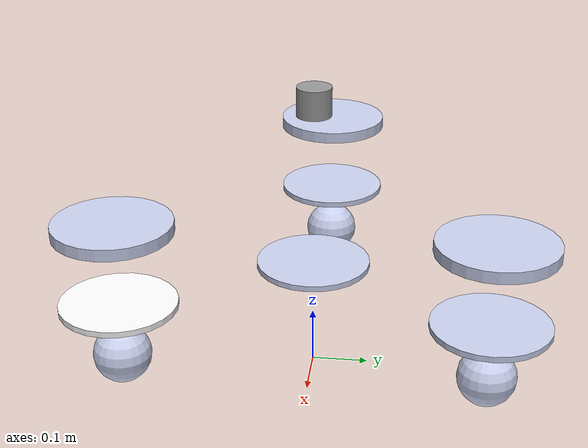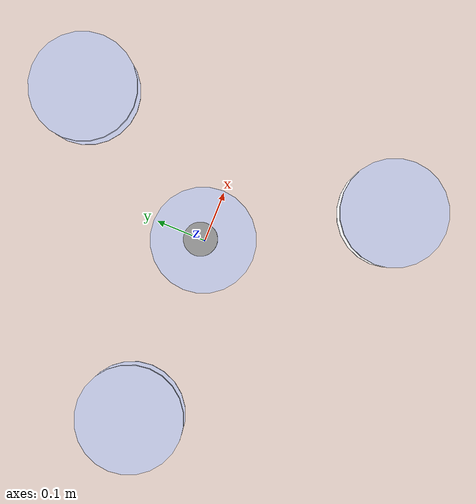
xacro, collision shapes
<?xml version="1.0"?>
<robot name="tri_steer" xmlns:xacro="http://www.ros.org/wiki/xacro">

  <!-- ========== 参数 ========== -->
  <xacro:property name="wheel_radius" value="0.05"/>
  <xacro:property name="body_radius" value="0.05"/>
  <xacro:property name="body_height" value="0.05"/>

  <xacro:property name="wheel_damping" value="0.0001"/>
  <xacro:property name="wheel_friction" value="0.0001"/>

  <xacro:property name="wheel_effot" value="300"/>
  <xacro:property name="wheel_velocity" value="20"/>

  <xacro:property name="turn_effot" value="300"/>
  <xacro:property name="turn_velocity" value="10"/>

  <xacro:property name="pos_wheel_z" value="-0.045"/>

  <xacro:property name="turn_radius" value="0.1"/>
  <xacro:property name="turn_height" value="0.01"/>

  <xacro:property name="lift_radius" value="0.1"/>
  <xacro:property name="lift_height" value="0.02"/>

  <!-- 轮子到车体中心的半径（决定转弯时轮速差） -->

  <!-- ========== base ========== -->
  <link name="base_footprint"/>

  <link
    name="base_link">
    <inertial>
      <origin
        xyz="0.008137 -0.0019645 -0.0037906"
        rpy="0 0 0" />
      <mass
        value="5.0701" />
      <inertia
        ixx="0.056129"
        ixy="-0.00012401"
        ixz="-5.0766E-05"
        iyy="0.054858"
        iyz="5.3268E-05"
        izz="0.10521" />
    </inertial>
    <visual>
      <origin
        xyz="0 0 0"
        rpy="0 0 0" />
      <geometry>
        <mesh
          filename="package:~/Gitkraken/ros1_slam/src/tri_steer_description/meshes2/base_link.STL" />
      </geometry>
      <material
        name="">
        <color
          rgba="0.79216 0.81961 0.93333 1" />
      </material>
    </visual>
    <collision>
      <origin
        xyz="0 0 0"
        rpy="0 0 0" />
      <geometry>
       <cylinder radius="${turn_radius}" length="${turn_height}"/>
       </geometry>
    </collision>
  </link>

   <joint name="base_link_joint" type="fixed">
    <origin xyz="0 0 0.2" rpy="0 0 0"/>
    <parent link="base_footprint"/>
    <child link="base_link"/>
  </joint>

  <!-- 舵轮 1 -->
  <link
    name="turn1">
    <inertial>
      <origin
        xyz="-8.1365E-05 0.00049252 0.088662"
        rpy="0 0 0" />
      <mass
        value="3.2924" />
      <inertia
        ixx="0.006991"
        ixy="-0.00016006"
        ixz="-1.731E-06"
        iyy="0.0076006"
        iyz="4.8359E-06"
        izz="0.012782" />
    </inertial>
    <visual>
      <origin
        xyz="0 0 0"
        rpy="0 0 0" />
      <geometry>
        <mesh
          filename="package:~/Gitkraken/ros1_slam/src/tri_steer_description/meshes2/turn1.STL" />
      </geometry>
      <material
        name="">
        <color
          rgba="0.79216 0.81961 0.93333 1" />
      </material>
    </visual>
    <collision>
  <origin xyz="0 0 0.05" rpy="0 0 0"/>
  <geometry><cylinder radius="${turn_radius}" length="${turn_height}"/></geometry>
  </collision>
  </link>
<joint
    name="joint11"
    type="continuous">
    <origin
      xyz="-0.35334 0 -0.055357"
      rpy="0 0 0" />
    <parent
      link="base_link" />
    <child
      link="turn1" />
    <axis
      xyz="0 0 1" />
    <dynamics damping="${wheel_damping}" friction="${wheel_friction}"/>
    <limit effort="${turn_effot}" velocity="${turn_velocity}"/>
  </joint>

   <link
    name="wheel1">
    <inertial>
      <origin
        xyz="-2.9476E-14 -0.043943 3.5416E-14"
        rpy="0 0 0" />
      <mass
        value="0.28016" />
      <inertia
        ixx="0.00022144"
        ixy="2.6268E-18"
        ixz="2.7544E-19"
        iyy="0.00034522"
        iyz="-3.6931E-17"
        izz="0.00022144" />
    </inertial>
    <visual>
      <origin
        xyz="0 0 0"
        rpy="0 0 0" />
      <geometry>
        <mesh
          filename="package:~/Gitkraken/ros1_slam/src/tri_steer_description/meshes2/wheel1.STL" />
      </geometry>
      <material
        name="">
        <color
          rgba="0.79216 0.81961 0.93333 1" />
      </material>
    </visual>
    <collision>
      <origin
        xyz="0 -0.045 0"
        rpy="0 0 0" />
      <geometry>
       <sphere radius= "${wheel_radius}"/>
      </geometry>
    </collision>
  </link>
  <joint
    name="joint12"
    type="continuous">
    <origin
      xyz="0 0.045 -0.045"
      rpy="0 0 0" />
    <parent
      link="turn1" />
    <child
      link="wheel1" />
    <axis
      xyz="0 1 0" />
    <dynamics damping="${wheel_damping}" friction="${wheel_friction}" />
    <limit effort="${wheel_effot}" velocity="${wheel_velocity}" />
  </joint>

 <link
    name="lift1">
    <inertial>
      <origin
        xyz="-0.00026898 0.0001523 -0.026187"
        rpy="0 0 0" />
      <mass
        value="0.54659" />
      <inertia
        ixx="0.0014575"
        ixy="-5.8921E-08"
        ixz="-1.1592E-07"
        iyy="0.0014564"
        iyz="6.7896E-07"
        izz="0.0026981" />
    </inertial>
    <visual>
      <origin
        xyz="0 0 0"
        rpy="0 0 0" />
      <geometry>
        <mesh
          filename="package:~/Gitkraken/ros1_slam/src/tri_steer_description/meshes2/lift1.STL" />
      </geometry>
      <material
        name="">
        <color
          rgba="0.79216 0.81961 0.93333 1" />
      </material>
    </visual>
    <collision>
    <origin xyz="0 0 -0.01" rpy="0 0 0"/>
      <geometry><cylinder radius="${lift_radius}" length="${lift_height}"/></geometry>
    </collision>
  </link>
  <joint
    name="joint13"
    type="prismatic">
    <origin
      xyz="0 0 0.201"
      rpy="0 0 0" />
    <parent
      link="turn1" />
    <child
      link="lift1" />
    <axis
      xyz="0 0 1" />
  <dynamics damping="0.2" friction="0.1"/>
  <limit lower="0" upper="0.05" effort="2000" velocity="0.1"/>

  </joint>

  <!-- 舵轮 2 -->
  <link
    name="turn2">
    <inertial>
      <origin
        xyz="-8.1358E-05 0.0004925 0.088662"
        rpy="0 0 0" />
      <mass
        value="3.2924" />
      <inertia
        ixx="0.006991"
        ixy="-0.00016006"
        ixz="-1.731E-06"
        iyy="0.0076006"
        iyz="4.8359E-06"
        izz="0.012782" />
    </inertial>
    <visual>
      <origin
        xyz="0 0 0"
        rpy="0 0 0" />
      <geometry>
        <mesh
          filename="package:~/Gitkraken/ros1_slam/src/tri_steer_description/meshes2/turn2.STL" />
      </geometry>
      <material
        name="">
        <color
          rgba="0.79216 0.81961 0.93333 1" />
      </material>
    </visual>
  <collision>
  <origin xyz="0 0 0.05" rpy="0 0 0"/>
  <geometry><cylinder radius="${turn_radius}" length="${turn_height}"/></geometry>
  </collision>

  </link>
  <joint
    name="joint21"
    type="continuous">
    <origin
      xyz="0.17667 0.306 -0.055357"
      rpy="0 0 0" />
    <parent
      link="base_link" />
    <child
      link="turn2" />
    <axis
      xyz="0 0 1" />
    <dynamics damping="${wheel_damping}" friction="${wheel_friction}"/>
    <limit effort="${turn_effot}" velocity="${turn_velocity}"/>
  </joint>

<link
    name="wheel2">
    <inertial>
      <origin
        xyz="8.3822E-15 -0.046057 -1.0977E-14"
        rpy="0 0 0" />
      <mass
        value="0.28016" />
      <inertia
        ixx="0.00022144"
        ixy="2.419E-19"
        ixz="4.5831E-19"
        iyy="0.00034522"
        iyz="-7.1227E-17"
        izz="0.00022144" />
    </inertial>
    <visual>
      <origin
        xyz="0 0 0"
        rpy="0 0 0" />
      <geometry>
        <mesh
          filename="package:~/Gitkraken/ros1_slam/src/tri_steer_description/meshes2/wheel2.STL" />
      </geometry>
      <material
        name="">
        <color
          rgba="0.79216 0.81961 0.93333 1" />
      </material>
    </visual>
    <collision>
      <origin
        xyz="0 -0.045 0"
        rpy="0 0 0" />
      <geometry>
       <sphere radius= "${wheel_radius}"/>
      </geometry>
    </collision>
  </link>
  <joint
    name="joint22"
    type="continuous">
    <origin
      xyz="0 0.045 -0.045"
      rpy="0 0 0" />
    <parent
      link="turn2" />
    <child
      link="wheel2" />
    <axis
      xyz="0 1 0" />
    <dynamics damping="${wheel_damping}" friction="${wheel_friction}"/>
    <limit effort="${wheel_effot}" velocity="${wheel_velocity}"/>
  </joint>

 <link
    name="lift2">
    <inertial>
      <origin
        xyz="-0.00017636 0.00025402 -0.026187"
        rpy="0 0 0" />
      <mass
        value="0.54658" />
      <inertia
        ixx="0.0014573"
        ixy="-4.7272E-07"
        ixz="1.8988E-07"
        iyy="0.0014566"
        iyz="6.7451E-07"
        izz="0.0026981" />
    </inertial>
    <visual>
      <origin
        xyz="0 0 0"
        rpy="0 0 0" />
      <geometry>
        <mesh
          filename="package:~/Gitkraken/ros1_slam/src/tri_steer_description/meshes2/lift2.STL" />
      </geometry>
      <material
        name="">
        <color
          rgba="0.79216 0.81961 0.93333 1" />
      </material>
    </visual>
    <collision>
    <origin xyz="0 0 -0.01" rpy="0 0 0"/>
      <geometry><cylinder radius="${lift_radius}" length="${lift_height}"/></geometry>
    </collision>
  </link>
  <joint
    name="joint23"
    type="prismatic">
    <origin
      xyz="0 0 0.201"
      rpy="0 0 0" />
    <parent
      link="turn2" />
    <child
      link="lift2" />
    <axis
      xyz="0 0 1" />
  <dynamics damping="0.2" friction="0.1"/>
  <limit lower="0" upper="0.05" effort="2000" velocity="0.1"/>

  </joint>

<!-- 舵轮 3-->
<link
    name="turn3">
      <inertial>
      <origin
        xyz="-8.1358E-05 0.0004925 0.088662"
        rpy="0 0 0" />
      <mass
        value="3.2924" />
      <inertia
        ixx="0.006991"
        ixy="-0.00016006"
        ixz="-1.731E-06"
        iyy="0.0076006"
        iyz="4.8359E-06"
        izz="0.012782" />
    </inertial>
    <visual>
      <origin
        xyz="0 0 0"
        rpy="0 0 0" />
      <geometry>
        <mesh
          filename="package:~/Gitkraken/ros1_slam/src/tri_steer_description/meshes2/turn3.STL" />
      </geometry>
      <material
        name="">
        <color
          rgba="1 1 1 1" />
      </material>
    </visual>
  <collision>
  <origin xyz="0 0 0.05" rpy="0 0 0"/>
  <geometry><cylinder radius="${turn_radius}" length="${turn_height}"/></geometry>
  </collision>
  </link>

  <joint
    name="joint31"
    type="continuous">
    <origin
      xyz="0.17667 -0.306 -0.055357"
      rpy="0 0 0" />
    <parent
      link="base_link" />
    <child
      link="turn3" />
    <axis
      xyz="0 0 1" />
    <dynamics damping="${wheel_damping}" friction="${wheel_friction}"/>
    <limit effort="${turn_effot}" velocity="${turn_velocity}"/>
  </joint>

<link
    name="wheel3">
    <inertial>
      <origin
        xyz="5.3291E-15 0.043943 -1.1433E-13"
        rpy="0 0 0" />
      <mass
        value="0.28016" />
      <inertia
        ixx="0.00022144"
        ixy="-4.9652E-20"
        ixz="4.2165E-19"
        iyy="0.00034522"
        iyz="-5.746E-17"
        izz="0.00022144" />
    </inertial>
    <visual>
      <origin
        xyz="0 0 0"
        rpy="0 0 0" />
      <geometry>
        <mesh
          filename="package:~/Gitkraken/ros1_slam/src/tri_steer_description/meshes2/wheel3.STL" />
      </geometry>
      <material
        name="">
        <color
          rgba="0.79216 0.81961 0.93333 1" />
      </material>
    </visual>
    <collision>
      <origin
        xyz="0 0.045 0"
        rpy="0 0 0" />
      <geometry>
       <sphere radius= "${wheel_radius}"/>
      </geometry>
    </collision>
  </link>

  <joint
    name="joint32"
    type="continuous">
    <origin
      xyz="0 -0.045 -0.045"
      rpy="0 0 0" />
    <parent
      link="turn3" />
    <child
      link="wheel3" />
    <axis
      xyz="0 1 0" />
    <dynamics damping="${wheel_damping}" friction="${wheel_friction}"/>
    <limit effort="${wheel_effot}" velocity="${wheel_velocity}"/>
  </joint>

 <link
    name="lift3">
    <inertial>
      <origin
        xyz="-0.0001763 0.00025409 -0.026187"
        rpy="0 0 0" />
      <mass
        value="0.54658" />
      <inertia
        ixx="0.0014573"
        ixy="-4.7272E-07"
        ixz="1.8988E-07"
        iyy="0.0014566"
        iyz="6.7451E-07"
        izz="0.0026981" />
    </inertial>
    <visual>
      <origin
        xyz="0 0 0"
        rpy="0 0 0" />
      <geometry>
        <mesh
          filename="package:~/Gitkraken/ros1_slam/src/tri_steer_description/meshes2/lift3.STL" />
      </geometry>
      <material
        name="">
        <color
          rgba="0.79216 0.81961 0.93333 1" />
      </material>
    </visual>
    <collision>
    <origin xyz="0 0 -0.01" rpy="0 0 0"/>
      <geometry><cylinder radius="${lift_radius}" length="${lift_height}"/></geometry>
    </collision>
  </link>
  <joint
    name="joint33"
    type="prismatic">
    <origin
      xyz="0 0 0.201"
      rpy="0 0 0" />
    <parent
      link="turn3" />
    <child
      link="lift3" />
    <axis
      xyz="0 0 1" />
    <dynamics damping="0.2" friction="0.1"/>
    <limit lower="0" upper="0.05" effort="2000" velocity="0.1"/>
  </joint>

  <!-- ========== 激光雷达 link（用于 TF 和外观）========== -->
  <link name="laser">
    <inertial>
      <mass value="0.1"/>
      <origin xyz="0 0 0" rpy="0 0 0"/>
      <inertia ixx="1e-4" ixy="0" ixz="0" iyy="1e-4" iyz="0" izz="1e-4"/>
    </inertial>

    <visual>
      <origin xyz="0 0 0" rpy="0 0 0"/>
      <geometry>
        <cylinder radius="0.03" length="0.05"/>
      </geometry>
      <material name="Gray">
        <color rgba="0.6 0.6 0.6 1"/>
      </material>
    </visual>

    <collision>
      <origin xyz="0 0 0" rpy="0 0 0"/>
      <geometry>
        <cylinder radius="0.03" length="0.05"/>
      </geometry>
    </collision>
  </link>

  <!-- laser 固定到 base_link 上（根据你雷达实际安装位置改 xyz） -->
  <joint name="laser_joint" type="fixed">
    <parent link="base_link"/>
    <child link="laser"/>
    <!-- 例：雷达在车体前方 0.20m，高 0.12m -->
    <origin xyz="0.0 0 0.3" rpy="0 0 0"/>
  </joint>

<!-- ========== Gazebo 激光传感器：发布 /scan ========== -->
<gazebo reference="laser">
  <sensor type="ray" name="laser_sensor">
    <pose>0 0 0 0 0 0</pose>
    <!-- 雷达扫描射线是否可见 -->
    <!-- 雷达更新频率 -->
    <update_rate>10</update_rate>

    <ray>
      <scan>
        <horizontal>
          <samples>1440</samples>
          <resolution>1</resolution>
          <min_angle>-3.14</min_angle>  <!-- -90deg -->
          <max_angle> 3.14</max_angle>  <!-- +90deg -->
        </horizontal>
      </scan>
      <range>
        <min>0.10</min>
        <max>10.0</max>
        <resolution>0.01</resolution>
      </range>
      <noise>
        <type>gaussian</type>
        <mean>0.0</mean>
        <stddev>0.01</stddev>
      </noise>
    </ray>

    <plugin name="gazebo_rplidar" filename="libgazebo_ros_laser.so">
      <!-- 使用ros包仿真，使用/scan -->
      <!-- 因为雷达与车体是平行的，而车体与地面roll 或者 pitch成一定角度，因此改名通过代码形式发布翻转后的/scan话题 -->
      <topicName>/not_true_scan</topicName>
      <!-- 如果需要使用ros包仿真的话，注释掉/laser_scan，平时使用/laser_scan -->
      <frameName>laser</frameName>
    </plugin>
  </sensor>
</gazebo>

    <!-- Gazebo friction for wheel -->
    <gazebo reference="wheel1">
      <mu1>250</mu1>
      <mu2>250</mu2>
      <kp>200000</kp>
      <kd>1200</kd>
      <material>Gazebo/Black</material>
    </gazebo>

    <gazebo reference="wheel2">
      <mu1>250</mu1>
      <mu2>250</mu2>
      <kp>200000</kp>
      <kd>1200</kd>
      <material>Gazebo/Black</material>
    </gazebo>

    <gazebo reference="wheel3">
      <mu1>250</mu1>
      <mu2>250</mu2>
      <kp>200000</kp>
      <kd>1200</kd>
      <material>Gazebo/Black</material>
    </gazebo>

    <gazebo reference="turn1">
      <material>Gazebo/Green</material>
    </gazebo>

    <gazebo reference="turn2">
      <material>Gazebo/Green</material>
    </gazebo>

  <gazebo reference="turn3">
      <material>Gazebo/Green</material>
    </gazebo>

  <!-- ===== transmissions for tri_steer ros_control ===== -->

  <!-- steer joints: Position -->
  <transmission name="steer_1_trans">
    <type>transmission_interface/SimpleTransmission</type>
    <joint name="joint11">
      <hardwareInterface>hardware_interface/PositionJointInterface</hardwareInterface>
    </joint>
    <actuator name="steer_1_motor">
      <hardwareInterface>hardware_interface/PositionJointInterface</hardwareInterface>
      <mechanicalReduction>1</mechanicalReduction>
    </actuator>
  </transmission>

  <transmission name="steer_2_trans">
    <type>transmission_interface/SimpleTransmission</type>
    <joint name="joint21">
      <hardwareInterface>hardware_interface/PositionJointInterface</hardwareInterface>
    </joint>
    <actuator name="steer_2_motor">
      <hardwareInterface>hardware_interface/PositionJointInterface</hardwareInterface>
      <mechanicalReduction>1</mechanicalReduction>
    </actuator>
  </transmission>

  <transmission name="steer_3_trans">
    <type>transmission_interface/SimpleTransmission</type>
    <joint name="joint31">
      <hardwareInterface>hardware_interface/PositionJointInterface</hardwareInterface>
    </joint>
    <actuator name="steer_3_motor">
      <hardwareInterface>hardware_interface/PositionJointInterface</hardwareInterface>
      <mechanicalReduction>1</mechanicalReduction>
    </actuator>
  </transmission>

  <!-- wheel joints: Velocity -->
  <transmission name="wheel_1_trans">
    <type>transmission_interface/SimpleTransmission</type>
    <joint name="joint12">
      <hardwareInterface>hardware_interface/VelocityJointInterface</hardwareInterface>
    </joint>
    <actuator name="wheel_1_motor">
      <hardwareInterface>hardware_interface/VelocityJointInterface</hardwareInterface>
      <mechanicalReduction>1</mechanicalReduction>
    </actuator>
  </transmission>

  <transmission name="wheel_2_trans">
    <type>transmission_interface/SimpleTransmission</type>
    <joint name="joint22">
      <hardwareInterface>hardware_interface/VelocityJointInterface</hardwareInterface>
    </joint>
    <actuator name="wheel_2_motor">
      <hardwareInterface>hardware_interface/VelocityJointInterface</hardwareInterface>
      <mechanicalReduction>1</mechanicalReduction>
    </actuator>
  </transmission>

  <transmission name="wheel_3_trans">
    <type>transmission_interface/SimpleTransmission</type>
    <joint name="joint32">
      <hardwareInterface>hardware_interface/VelocityJointInterface</hardwareInterface>
    </joint>
    <actuator name="wheel_3_motor">
      <hardwareInterface>hardware_interface/VelocityJointInterface</hardwareInterface>
      <mechanicalReduction>1</mechanicalReduction>
    </actuator>
  </transmission>

  <!-- lift joints: Position (如果你要控升降就保留；暂时不用也可以先不启 controller) -->
  <transmission name="lift_1_trans">
    <type>transmission_interface/SimpleTransmission</type>
    <joint name="joint13">
      <hardwareInterface>hardware_interface/PositionJointInterface</hardwareInterface>
    </joint>
    <actuator name="lift_1_motor">
      <hardwareInterface>hardware_interface/PositionJointInterface</hardwareInterface>
      <mechanicalReduction>1</mechanicalReduction>
    </actuator>
  </transmission>

  <transmission name="lift_2_trans">
    <type>transmission_interface/SimpleTransmission</type>
    <joint name="joint23">
      <hardwareInterface>hardware_interface/PositionJointInterface</hardwareInterface>
    </joint>
    <actuator name="lift_2_motor">
      <hardwareInterface>hardware_interface/PositionJointInterface</hardwareInterface>
      <mechanicalReduction>1</mechanicalReduction>
    </actuator>
  </transmission>

  <transmission name="lift_3_trans">
    <type>transmission_interface/SimpleTransmission</type>
    <joint name="joint33">
      <hardwareInterface>hardware_interface/PositionJointInterface</hardwareInterface>
    </joint>
    <actuator name="lift_3_motor">
      <hardwareInterface>hardware_interface/PositionJointInterface</hardwareInterface>
      <mechanicalReduction>1</mechanicalReduction>
    </actuator>
  </transmission>

  <!-- ========== Gazebo ros_control 插件 ========== -->
  <gazebo>
    <plugin name="gazebo_ros_control" filename="libgazebo_ros_control.so">
      <robotNamespace>/</robotNamespace>
      <robotParam>/robot_description</robotParam>
      <rosDebugLevel>Debug</rosDebugLevel>
      <!-- 防止gazebo与robot_state_publisher冲突以下两者设定为false -->
      <publishWheelTF>false</publishWheelTF>
      <publishTf>1</publishTf>
      <publishWheelJointState>false</publishWheelJointState>
      <updateRate>10.0</updateRate>

      <!-- 里程计话题 -->
      <odometryTopic>odom</odometryTopic>
      <odometryFrame>odom</odometryFrame>
      <odometryRate>100.0</odometryRate>   <!-- 更新速度 -->
      <robotBaseFrame>base_footprint</robotBaseFrame>   <!-- 根坐标系 -->
      <cmdVelTimeOut>0.25</cmdVelTimeOut>
      <publishOdometryTf>1</publishOdometryTf>

      <broadcastTF>1</broadcastTF>
    </plugin>
  </gazebo>

  <!-- 以下是使用gazebo插件获取机器人位置真值的插件 -->

</robot>
